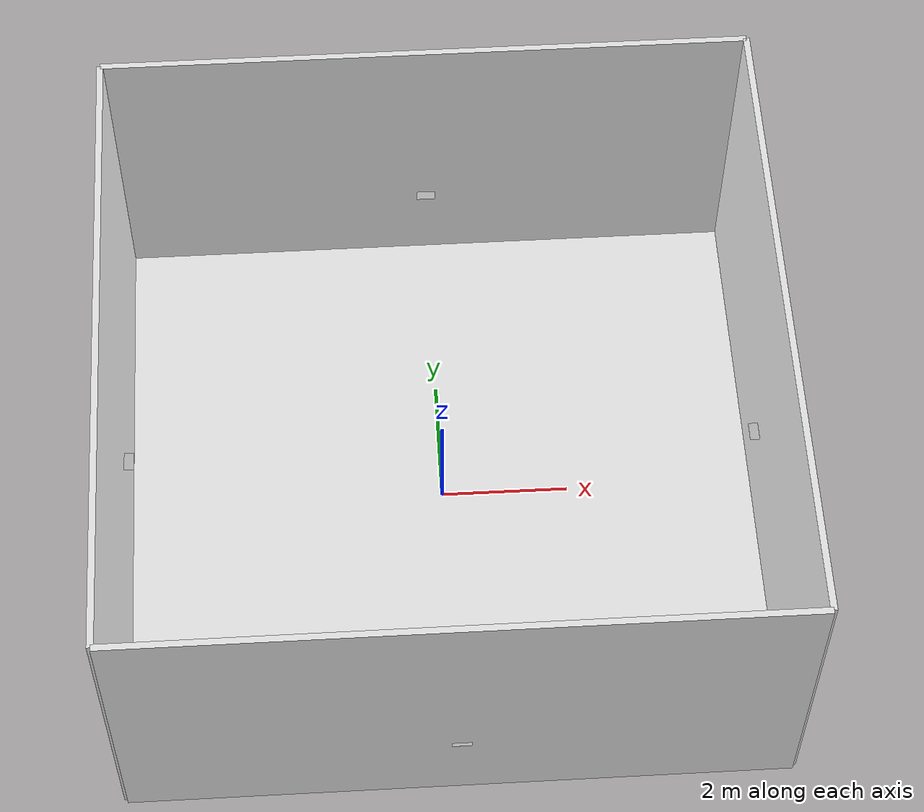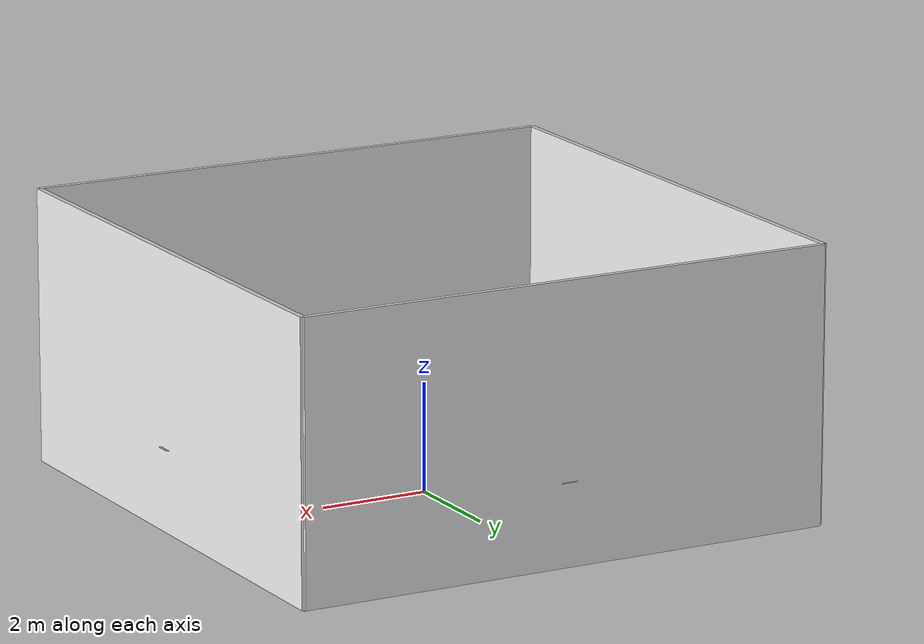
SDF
<?xml version="1.0" ?>
<sdf version="1.6">
  <world name="aruco_world">
    <!-- Освещение -->
    <include>
      <uri>model://sun</uri>
    </include>

    <!-- Комната (4 стены и пол) -->
    <model name="room">
      <static>true</static>
      <link name="link">
        <!-- Пол -->
        <collision name="floor_collision">
          <geometry>
            <plane>
              <normal>0 0 1</normal>
              <size>10 10</size>
            </plane>
          </geometry>
        </collision>
        <visual name="floor_visual">
          <geometry>
            <plane>
              <normal>0 0 1</normal>
              <size>10 10</size>
            </plane>
          </geometry>
          <material>
            <script>
              <uri>file://media/materials/scripts/gazebo.material</uri>
              <name>Gazebo/White</name>
            </script>
          </material>
        </visual>

        <!-- Стены с ArUco метками -->
        <!-- Северная стена -->
        <collision name="north_wall_collision">
          <pose>0 5 2.5 0 0 0</pose>
          <geometry>
            <box>
              <size>10 0.1 5</size>
            </box>
          </geometry>
        </collision>
        <visual name="north_wall_visual">
          <pose>0 5 2.5 0 0 0</pose>
          <geometry>
            <box>
              <size>10 0.1 5</size>
            </box>
          </geometry>
          <material>
            <script>
              <uri>file://media/materials/scripts/gazebo.material</uri>
              <name>Gazebo/White</name>
            </script>
          </material>
        </visual>

        <!-- Южная стена -->
        <collision name="south_wall_collision">
          <pose>0 -5 2.5 0 0 0</pose>
          <geometry>
            <box>
              <size>10 0.1 5</size>
            </box>
          </geometry>
        </collision>
        <visual name="south_wall_visual">
          <pose>0 -5 2.5 0 0 0</pose>
          <geometry>
            <box>
              <size>10 0.1 5</size>
            </box>
          </geometry>
          <material>
            <script>
              <uri>file://media/materials/scripts/gazebo.material</uri>
              <name>Gazebo/White</name>
            </script>
          </material>
        </visual>

        <!-- Восточная стена -->
        <collision name="east_wall_collision">
          <pose>5 0 2.5 0 0 0</pose>
          <geometry>
            <box>
              <size>0.1 10 5</size>
            </box>
          </geometry>
        </collision>
        <visual name="east_wall_visual">
          <pose>5 0 2.5 0 0 0</pose>
          <geometry>
            <box>
              <size>0.1 10 5</size>
            </box>
          </geometry>
          <material>
            <script>
              <uri>file://media/materials/scripts/gazebo.material</uri>
              <name>Gazebo/White</name>
            </script>
          </material>
        </visual>

        <!-- Западная стена -->
        <collision name="west_wall_collision">
          <pose>-5 0 2.5 0 0 0</pose>
          <geometry>
            <box>
              <size>0.1 10 5</size>
            </box>
          </geometry>
        </collision>
        <visual name="west_wall_visual">
          <pose>-5 0 2.5 0 0 0</pose>
          <geometry>
            <box>
              <size>0.1 10 5</size>
            </box>
          </geometry>
          <material>
            <script>
              <uri>file://media/materials/scripts/gazebo.material</uri>
              <name>Gazebo/White</name>
            </script>
          </material>
        </visual>
      </link>
    </model>

    <!-- ArUco метки на стенах -->
    <!-- Важно: нормаль плоскости (0 0 1) должна быть направлена ВНУТРЬ комнаты -->

    <!-- Метка на северной стене -->
    <model name="aruco_0">
      <static>true</static>
      <pose>0 4.95 1.5 0 0 1.57</pose>  <!-- x, y, z, roll, pitch, yaw -->
      <link name="link">
        <visual name="visual">
          <geometry>
            <plane>
              <normal>0 0 1</normal>  <!-- Направлена в сторону комнаты -->
              <size>0.3 0.3</size>
            </plane>
          </geometry>
          <material>
            <script>
              <uri>file://media/materials/scripts/aruco.material</uri>
              <name>ArUco/0</name>
            </script>
          </material>
        </visual>
      </link>
    </model>

    <!-- Метка на восточной стене -->
    <model name="aruco_1">
      <static>true</static>
      <pose>4.95 0 1.5 0 0 3.14</pose>  <!-- Поворот на 180 градусов -->
      <link name="link">
        <visual name="visual">
          <geometry>
            <plane>
              <normal>0 0 1</normal>  <!-- Направлена в сторону комнаты -->
              <size>0.3 0.3</size>
            </plane>
          </geometry>
          <material>
            <script>
              <uri>file://media/materials/scripts/aruco.material</uri>
              <name>ArUco/1</name>
            </script>
          </material>
        </visual>
      </link>
    </model>

    <!-- Метка на южной стене -->
    <model name="aruco_2">
      <static>true</static>
      <pose>0 -4.95 1.5 0 0 -1.57</pose>  <!-- x, y, z, roll, pitch, yaw -->
      <link name="link">
        <visual name="visual">
          <geometry>
            <plane>
              <normal>0 0 1</normal>
              <size>0.3 0.3</size>
            </plane>
          </geometry>
          <material>
            <script>
              <uri>file://media/materials/scripts/aruco.material</uri>
              <name>ArUco/2</name>
            </script>
          </material>
        </visual>
      </link>
    </model>

    <!-- Метка на западной стене -->
    <model name="aruco_3">
      <static>true</static>
      <pose>-4.95 0 1.5 0 0 0</pose>
      <link name="link">
        <visual name="visual">
          <geometry>
            <plane>
              <normal>0 0 1</normal>
              <size>0.3 0.3</size>
            </plane>
          </geometry>
          <material>
            <script>
              <uri>file://media/materials/scripts/aruco.material</uri>
              <name>ArUco/3</name>
            </script>
          </material>
        </visual>
      </link>
    </model>
  </world>
</sdf>
